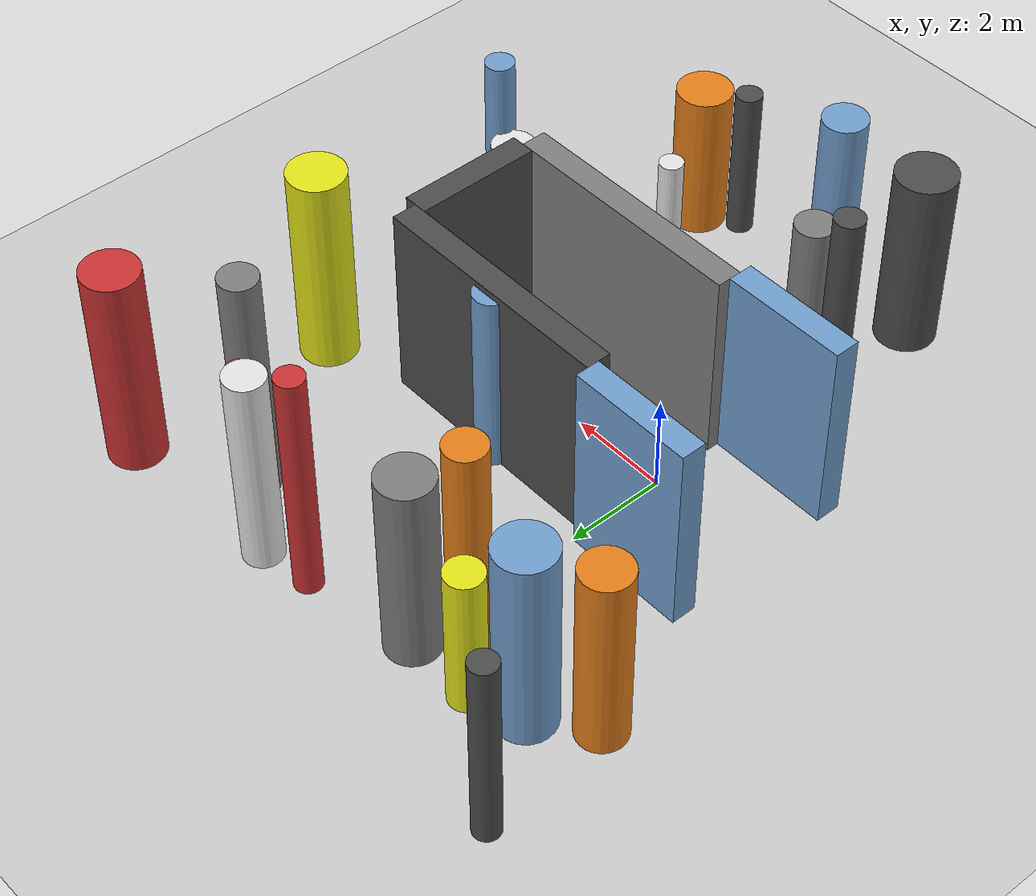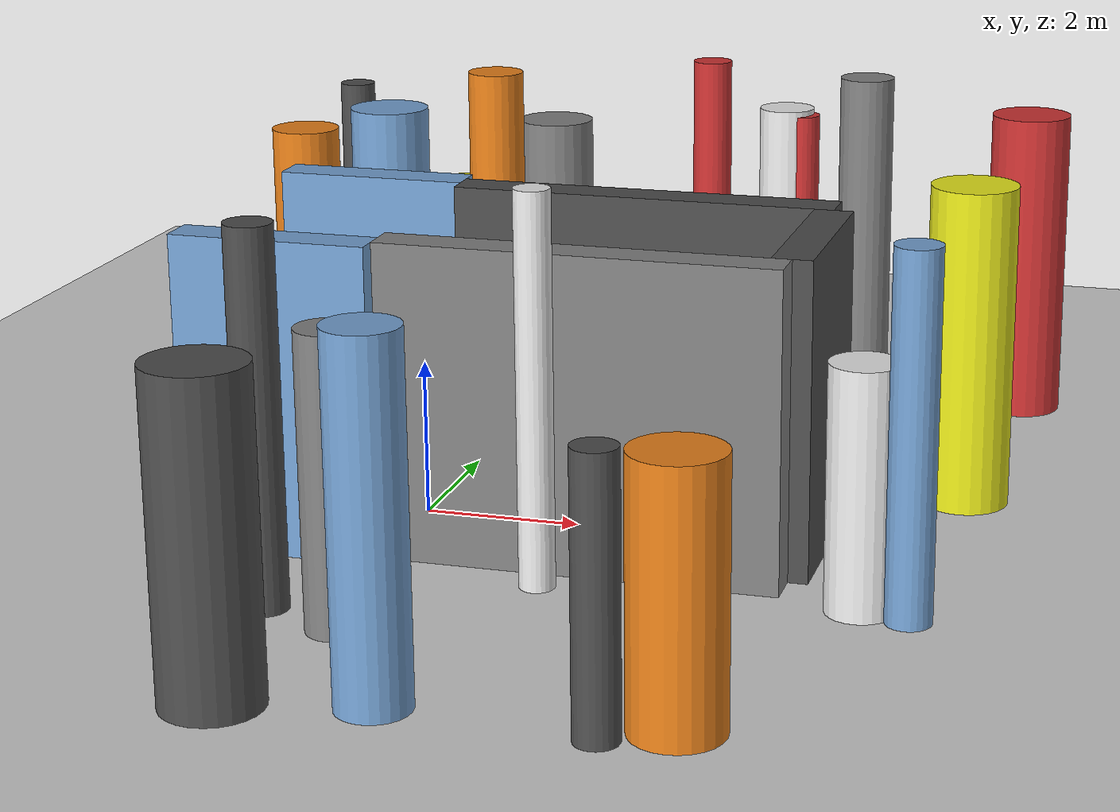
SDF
<?xml version='1.0'?>
<sdf version='1.6'>
  <world name='routeA_rl_v1__dense_recovery__rl_train__cul_de_sac_trap__000075'>
    <!-- Sun light -->
    <light name='sun' type='directional'>
      <cast_shadows>1</cast_shadows>
      <pose>0 0 10 0 0 0</pose>
      <diffuse>0.8 0.8 0.8 1</diffuse>
      <specular>0.2 0.2 0.2 1</specular>
      <attenuation>
        <range>1000</range>
        <constant>0.9</constant>
        <linear>0.01</linear>
        <quadratic>0.001</quadratic>
      </attenuation>
      <direction>-0.5 0.1 -0.9</direction>
    </light>

    <!-- Ground plane -->
    <model name='ground_plane'>
      <static>1</static>
      <link name='link'>
        <collision name='collision'>
          <geometry>
            <plane>
              <normal>0 0 1</normal>
              <size>100 100</size>
            </plane>
          </geometry>
          <surface>
            <contact>
              <collide_bitmask>65535</collide_bitmask>
              <ode/>
            </contact>
            <friction>
              <ode>
                <mu>100</mu>
                <mu2>50</mu2>
              </ode>
              <torsional><ode/></torsional>
            </friction>
            <bounce/>
          </surface>
          <max_contacts>10</max_contacts>
        </collision>
        <visual name='visual'>
          <cast_shadows>0</cast_shadows>
          <geometry>
            <plane>
              <normal>0 0 1</normal>
              <size>100 100</size>
            </plane>
          </geometry>
          <material>
            <script>
              <uri>file://media/materials/scripts/gazebo.material</uri>
              <n>Gazebo/Grey</n>
            </script>
          </material>
        </visual>
      </link>
    </model>

    <!-- Environment -->
    <magnetic_field>6e-06 2.3e-05 -4.2e-05</magnetic_field>
    <atmosphere type='adiabatic'/>
    <physics name='default_physics' default='0' type='ode'>
      <gravity>0 0 -9.8</gravity>
      <max_step_size>0.004</max_step_size>
      <real_time_factor>1</real_time_factor>
      <real_time_update_rate>250</real_time_update_rate>
    </physics>
    <scene>
      <ambient>0.4 0.4 0.4 1</ambient>
      <background>0.7 0.7 0.7 1</background>
      <shadows>1</shadows>
    </scene>
    <wind/>
    <spherical_coordinates>
      <surface_model>EARTH_WGS84</surface_model>
      <latitude_deg>0</latitude_deg>
      <longitude_deg>0</longitude_deg>
      <elevation>0</elevation>
      <heading_deg>0</heading_deg>
    </spherical_coordinates>

    <!-- ============ OBSTACLES (27) ============ -->
    <model name='trap_side_l'>
      <static>1</static>
      <link name='link'>
        <visual name='visual'>
          <geometry>
            <box>
              <size>5.0000 0.5000 4.0000</size>
            </box>
          </geometry>
          <material>
            <script>
              <n>Gazebo/Grey</n>
              <uri>file://media/materials/scripts/gazebo.material</uri>
            </script>
            <ambient>0.5 0.5 0.5 1</ambient>
          </material>
        </visual>
        <collision name='collision'>
          <geometry>
            <box>
              <size>5.0000 0.5000 4.0000</size>
            </box>
          </geometry>
          <max_contacts>10</max_contacts>
          <surface>
            <contact><ode/></contact>
            <bounce/>
            <friction>
              <ode><mu>1</mu><mu2>1</mu2></ode>
              <torsional><ode/></torsional>
            </friction>
          </surface>
        </collision>
      </link>
      <pose>2.5000 -1.5000 2.0000 0 0 0.0000</pose>
    </model>

    <model name='trap_side_r'>
      <static>1</static>
      <link name='link'>
        <visual name='visual'>
          <geometry>
            <box>
              <size>5.0000 0.5000 4.0000</size>
            </box>
          </geometry>
          <material>
            <script>
              <n>Gazebo/DarkGrey</n>
              <uri>file://media/materials/scripts/gazebo.material</uri>
            </script>
            <ambient>0.3 0.3 0.3 1</ambient>
          </material>
        </visual>
        <collision name='collision'>
          <geometry>
            <box>
              <size>5.0000 0.5000 4.0000</size>
            </box>
          </geometry>
          <max_contacts>10</max_contacts>
          <surface>
            <contact><ode/></contact>
            <bounce/>
            <friction>
              <ode><mu>1</mu><mu2>1</mu2></ode>
              <torsional><ode/></torsional>
            </friction>
          </surface>
        </collision>
      </link>
      <pose>2.5000 1.5000 2.0000 0 0 0.0000</pose>
    </model>

    <model name='trap_back'>
      <static>1</static>
      <link name='link'>
        <visual name='visual'>
          <geometry>
            <box>
              <size>0.5000 2.5000 4.0000</size>
            </box>
          </geometry>
          <material>
            <script>
              <n>Gazebo/DarkGrey</n>
              <uri>file://media/materials/scripts/gazebo.material</uri>
            </script>
            <ambient>0.3 0.3 0.3 1</ambient>
          </material>
        </visual>
        <collision name='collision'>
          <geometry>
            <box>
              <size>0.5000 2.5000 4.0000</size>
            </box>
          </geometry>
          <max_contacts>10</max_contacts>
          <surface>
            <contact><ode/></contact>
            <bounce/>
            <friction>
              <ode><mu>1</mu><mu2>1</mu2></ode>
              <torsional><ode/></torsional>
            </friction>
          </surface>
        </collision>
      </link>
      <pose>5.0000 0.0000 2.0000 0 0 0.0000</pose>
    </model>

    <model name='trap_funnel_l'>
      <static>1</static>
      <link name='link'>
        <visual name='visual'>
          <geometry>
            <box>
              <size>2.5000 0.5000 4.0000</size>
            </box>
          </geometry>
          <material>
            <script>
              <n>Gazebo/Blue</n>
              <uri>file://media/materials/scripts/gazebo.material</uri>
            </script>
            <ambient>0.447 0.624 0.812 1</ambient>
          </material>
        </visual>
        <collision name='collision'>
          <geometry>
            <box>
              <size>2.5000 0.5000 4.0000</size>
            </box>
          </geometry>
          <max_contacts>10</max_contacts>
          <surface>
            <contact><ode/></contact>
            <bounce/>
            <friction>
              <ode><mu>1</mu><mu2>1</mu2></ode>
              <torsional><ode/></torsional>
            </friction>
          </surface>
        </collision>
      </link>
      <pose>-1.2500 -1.7500 2.0000 0 0 0.0000</pose>
    </model>

    <model name='trap_funnel_r'>
      <static>1</static>
      <link name='link'>
        <visual name='visual'>
          <geometry>
            <box>
              <size>2.5000 0.5000 4.0000</size>
            </box>
          </geometry>
          <material>
            <script>
              <n>Gazebo/Blue</n>
              <uri>file://media/materials/scripts/gazebo.material</uri>
            </script>
            <ambient>0.447 0.624 0.812 1</ambient>
          </material>
        </visual>
        <collision name='collision'>
          <geometry>
            <box>
              <size>2.5000 0.5000 4.0000</size>
            </box>
          </geometry>
          <max_contacts>10</max_contacts>
          <surface>
            <contact><ode/></contact>
            <bounce/>
            <friction>
              <ode><mu>1</mu><mu2>1</mu2></ode>
              <torsional><ode/></torsional>
            </friction>
          </surface>
        </collision>
      </link>
      <pose>-1.2500 1.7500 2.0000 0 0 0.0000</pose>
    </model>

    <model name='trap_scatter_0'>
      <static>1</static>
      <link name='link'>
        <visual name='visual'>
          <geometry>
            <cylinder>
              <radius>0.2911</radius>
              <length>4.6406</length>
            </cylinder>
          </geometry>
          <material>
            <script>
              <n>Gazebo/DarkGrey</n>
              <uri>file://media/materials/scripts/gazebo.material</uri>
            </script>
            <ambient>0.3 0.3 0.3 1</ambient>
          </material>
        </visual>
        <collision name='collision'>
          <geometry>
            <cylinder>
              <radius>0.2911</radius>
              <length>4.6406</length>
            </cylinder>
          </geometry>
          <max_contacts>10</max_contacts>
          <surface>
            <contact><ode/></contact>
            <bounce/>
            <friction>
              <ode><mu>1</mu><mu2>1</mu2></ode>
              <torsional><ode/></torsional>
            </friction>
          </surface>
        </collision>
      </link>
      <pose>-0.7337 -3.5854 2.3203 0 0 0.0000</pose>
    </model>

    <model name='trap_scatter_1'>
      <static>1</static>
      <link name='link'>
        <visual name='visual'>
          <geometry>
            <cylinder>
              <radius>0.5488</radius>
              <length>3.1217</length>
            </cylinder>
          </geometry>
          <material>
            <script>
              <n>Gazebo/Orange</n>
              <uri>file://media/materials/scripts/gazebo.material</uri>
            </script>
            <ambient>0.9 0.5 0.1 1</ambient>
          </material>
        </visual>
        <collision name='collision'>
          <geometry>
            <cylinder>
              <radius>0.5488</radius>
              <length>3.1217</length>
            </cylinder>
          </geometry>
          <max_contacts>10</max_contacts>
          <surface>
            <contact><ode/></contact>
            <bounce/>
            <friction>
              <ode><mu>1</mu><mu2>1</mu2></ode>
              <torsional><ode/></torsional>
            </friction>
          </surface>
        </collision>
      </link>
      <pose>4.7663 -5.6318 1.5609 0 0 0.0000</pose>
    </model>

    <model name='trap_scatter_2'>
      <static>1</static>
      <link name='link'>
        <visual name='visual'>
          <geometry>
            <cylinder>
              <radius>0.2220</radius>
              <length>4.8777</length>
            </cylinder>
          </geometry>
          <material>
            <script>
              <n>Gazebo/White</n>
              <uri>file://media/materials/scripts/gazebo.material</uri>
            </script>
            <ambient>0.9 0.9 0.9 1</ambient>
          </material>
        </visual>
        <collision name='collision'>
          <geometry>
            <cylinder>
              <radius>0.2220</radius>
              <length>4.8777</length>
            </cylinder>
          </geometry>
          <max_contacts>10</max_contacts>
          <surface>
            <contact><ode/></contact>
            <bounce/>
            <friction>
              <ode><mu>1</mu><mu2>1</mu2></ode>
              <torsional><ode/></torsional>
            </friction>
          </surface>
        </collision>
      </link>
      <pose>2.1370 -2.1363 2.4388 0 0 0.0000</pose>
    </model>

    <model name='trap_scatter_3'>
      <static>1</static>
      <link name='link'>
        <visual name='visual'>
          <geometry>
            <cylinder>
              <radius>0.5276</radius>
              <length>4.0536</length>
            </cylinder>
          </geometry>
          <material>
            <script>
              <n>Gazebo/Grey</n>
              <uri>file://media/materials/scripts/gazebo.material</uri>
            </script>
            <ambient>0.5 0.5 0.5 1</ambient>
          </material>
        </visual>
        <collision name='collision'>
          <geometry>
            <cylinder>
              <radius>0.5276</radius>
              <length>4.0536</length>
            </cylinder>
          </geometry>
          <max_contacts>10</max_contacts>
          <surface>
            <contact><ode/></contact>
            <bounce/>
            <friction>
              <ode><mu>1</mu><mu2>1</mu2></ode>
              <torsional><ode/></torsional>
            </friction>
          </surface>
        </collision>
      </link>
      <pose>0.0648 5.5417 2.0268 0 0 0.0000</pose>
    </model>

    <model name='trap_scatter_4'>
      <static>1</static>
      <link name='link'>
        <visual name='visual'>
          <geometry>
            <cylinder>
              <radius>0.2626</radius>
              <length>3.2333</length>
            </cylinder>
          </geometry>
          <material>
            <script>
              <n>Gazebo/DarkGrey</n>
              <uri>file://media/materials/scripts/gazebo.material</uri>
            </script>
            <ambient>0.3 0.3 0.3 1</ambient>
          </material>
        </visual>
        <collision name='collision'>
          <geometry>
            <cylinder>
              <radius>0.2626</radius>
              <length>3.2333</length>
            </cylinder>
          </geometry>
          <max_contacts>10</max_contacts>
          <surface>
            <contact><ode/></contact>
            <bounce/>
            <friction>
              <ode><mu>1</mu><mu2>1</mu2></ode>
              <torsional><ode/></torsional>
            </friction>
          </surface>
        </collision>
      </link>
      <pose>4.0109 -6.0454 1.6166 0 0 0.0000</pose>
    </model>

    <model name='trap_scatter_5'>
      <static>1</static>
      <link name='link'>
        <visual name='visual'>
          <geometry>
            <cylinder>
              <radius>0.2588</radius>
              <length>4.1295</length>
            </cylinder>
          </geometry>
          <material>
            <script>
              <n>Gazebo/DarkGrey</n>
              <uri>file://media/materials/scripts/gazebo.material</uri>
            </script>
            <ambient>0.3 0.3 0.3 1</ambient>
          </material>
        </visual>
        <collision name='collision'>
          <geometry>
            <cylinder>
              <radius>0.2588</radius>
              <length>4.1295</length>
            </cylinder>
          </geometry>
          <max_contacts>10</max_contacts>
          <surface>
            <contact><ode/></contact>
            <bounce/>
            <friction>
              <ode><mu>1</mu><mu2>1</mu2></ode>
              <torsional><ode/></torsional>
            </friction>
          </surface>
        </collision>
      </link>
      <pose>-3.5925 7.0756 2.0647 0 0 0.0000</pose>
    </model>

    <model name='trap_scatter_6'>
      <static>1</static>
      <link name='link'>
        <visual name='visual'>
          <geometry>
            <cylinder>
              <radius>0.4775</radius>
              <length>3.9665</length>
            </cylinder>
          </geometry>
          <material>
            <script>
              <n>Gazebo/Orange</n>
              <uri>file://media/materials/scripts/gazebo.material</uri>
            </script>
            <ambient>0.9 0.5 0.1 1</ambient>
          </material>
        </visual>
        <collision name='collision'>
          <geometry>
            <cylinder>
              <radius>0.4775</radius>
              <length>3.9665</length>
            </cylinder>
          </geometry>
          <max_contacts>10</max_contacts>
          <surface>
            <contact><ode/></contact>
            <bounce/>
            <friction>
              <ode><mu>1</mu><mu2>1</mu2></ode>
              <torsional><ode/></torsional>
            </friction>
          </surface>
        </collision>
      </link>
      <pose>-3.3662 4.4271 1.9833 0 0 0.0000</pose>
    </model>

    <model name='trap_scatter_7'>
      <static>1</static>
      <link name='link'>
        <visual name='visual'>
          <geometry>
            <cylinder>
              <radius>0.4300</radius>
              <length>3.0328</length>
            </cylinder>
          </geometry>
          <material>
            <script>
              <n>Gazebo/White</n>
              <uri>file://media/materials/scripts/gazebo.material</uri>
            </script>
            <ambient>0.9 0.9 0.9 1</ambient>
          </material>
        </visual>
        <collision name='collision'>
          <geometry>
            <cylinder>
              <radius>0.4300</radius>
              <length>3.0328</length>
            </cylinder>
          </geometry>
          <max_contacts>10</max_contacts>
          <surface>
            <contact><ode/></contact>
            <bounce/>
            <friction>
              <ode><mu>1</mu><mu2>1</mu2></ode>
              <torsional><ode/></torsional>
            </friction>
          </surface>
        </collision>
      </link>
      <pose>5.9986 -1.8953 1.5164 0 0 0.0000</pose>
    </model>

    <model name='trap_scatter_8'>
      <static>1</static>
      <link name='link'>
        <visual name='visual'>
          <geometry>
            <cylinder>
              <radius>0.3693</radius>
              <length>4.9331</length>
            </cylinder>
          </geometry>
          <material>
            <script>
              <n>Gazebo/Grey</n>
              <uri>file://media/materials/scripts/gazebo.material</uri>
            </script>
            <ambient>0.5 0.5 0.5 1</ambient>
          </material>
        </visual>
        <collision name='collision'>
          <geometry>
            <cylinder>
              <radius>0.3693</radius>
              <length>4.9331</length>
            </cylinder>
          </geometry>
          <max_contacts>10</max_contacts>
          <surface>
            <contact><ode/></contact>
            <bounce/>
            <friction>
              <ode><mu>1</mu><mu2>1</mu2></ode>
              <torsional><ode/></torsional>
            </friction>
          </surface>
        </collision>
      </link>
      <pose>4.6660 5.2502 2.4665 0 0 0.0000</pose>
    </model>

    <model name='trap_scatter_9'>
      <static>1</static>
      <link name='link'>
        <visual name='visual'>
          <geometry>
            <cylinder>
              <radius>0.2716</radius>
              <length>4.9184</length>
            </cylinder>
          </geometry>
          <material>
            <script>
              <n>Gazebo/Red</n>
              <uri>file://media/materials/scripts/gazebo.material</uri>
            </script>
            <ambient>0.8 0.2 0.2 1</ambient>
          </material>
        </visual>
        <collision name='collision'>
          <geometry>
            <cylinder>
              <radius>0.2716</radius>
              <length>4.9184</length>
            </cylinder>
          </geometry>
          <max_contacts>10</max_contacts>
          <surface>
            <contact><ode/></contact>
            <bounce/>
            <friction>
              <ode><mu>1</mu><mu2>1</mu2></ode>
              <torsional><ode/></torsional>
            </friction>
          </surface>
        </collision>
      </link>
      <pose>2.2739 6.0347 2.4592 0 0 0.0000</pose>
    </model>

    <model name='trap_scatter_10'>
      <static>1</static>
      <link name='link'>
        <visual name='visual'>
          <geometry>
            <cylinder>
              <radius>0.3884</radius>
              <length>3.6020</length>
            </cylinder>
          </geometry>
          <material>
            <script>
              <n>Gazebo/Grey</n>
              <uri>file://media/materials/scripts/gazebo.material</uri>
            </script>
            <ambient>0.5 0.5 0.5 1</ambient>
          </material>
        </visual>
        <collision name='collision'>
          <geometry>
            <cylinder>
              <radius>0.3884</radius>
              <length>3.6020</length>
            </cylinder>
          </geometry>
          <max_contacts>10</max_contacts>
          <surface>
            <contact><ode/></contact>
            <bounce/>
            <friction>
              <ode><mu>1</mu><mu2>1</mu2></ode>
              <torsional><ode/></torsional>
            </friction>
          </surface>
        </collision>
      </link>
      <pose>0.3277 -3.9654 1.8010 0 0 0.0000</pose>
    </model>

    <model name='trap_scatter_11'>
      <static>1</static>
      <link name='link'>
        <visual name='visual'>
          <geometry>
            <cylinder>
              <radius>0.3487</radius>
              <length>3.8762</length>
            </cylinder>
          </geometry>
          <material>
            <script>
              <n>Gazebo/Blue</n>
              <uri>file://media/materials/scripts/gazebo.material</uri>
            </script>
            <ambient>0.447 0.624 0.812 1</ambient>
          </material>
        </visual>
        <collision name='collision'>
          <geometry>
            <cylinder>
              <radius>0.3487</radius>
              <length>3.8762</length>
            </cylinder>
          </geometry>
          <max_contacts>10</max_contacts>
          <surface>
            <contact><ode/></contact>
            <bounce/>
            <friction>
              <ode><mu>1</mu><mu2>1</mu2></ode>
              <torsional><ode/></torsional>
            </friction>
          </surface>
        </collision>
      </link>
      <pose>2.5262 1.6416 1.9381 0 0 0.0000</pose>
    </model>

    <model name='trap_scatter_12'>
      <static>1</static>
      <link name='link'>
        <visual name='visual'>
          <geometry>
            <cylinder>
              <radius>0.3872</radius>
              <length>4.2623</length>
            </cylinder>
          </geometry>
          <material>
            <script>
              <n>Gazebo/White</n>
              <uri>file://media/materials/scripts/gazebo.material</uri>
            </script>
            <ambient>0.9 0.9 0.9 1</ambient>
          </material>
        </visual>
        <collision name='collision'>
          <geometry>
            <cylinder>
              <radius>0.3872</radius>
              <length>4.2623</length>
            </cylinder>
          </geometry>
          <max_contacts>10</max_contacts>
          <surface>
            <contact><ode/></contact>
            <bounce/>
            <friction>
              <ode><mu>1</mu><mu2>1</mu2></ode>
              <torsional><ode/></torsional>
            </friction>
          </surface>
        </collision>
      </link>
      <pose>3.3397 6.1885 2.1312 0 0 0.0000</pose>
    </model>

    <model name='trap_scatter_13'>
      <static>1</static>
      <link name='link'>
        <visual name='visual'>
          <geometry>
            <cylinder>
              <radius>0.5646</radius>
              <length>4.1707</length>
            </cylinder>
          </geometry>
          <material>
            <script>
              <n>Gazebo/Blue</n>
              <uri>file://media/materials/scripts/gazebo.material</uri>
            </script>
            <ambient>0.447 0.624 0.812 1</ambient>
          </material>
        </visual>
        <collision name='collision'>
          <geometry>
            <cylinder>
              <radius>0.5646</radius>
              <length>4.1707</length>
            </cylinder>
          </geometry>
          <max_contacts>10</max_contacts>
          <surface>
            <contact><ode/></contact>
            <bounce/>
            <friction>
              <ode><mu>1</mu><mu2>1</mu2></ode>
              <torsional><ode/></torsional>
            </friction>
          </surface>
        </collision>
      </link>
      <pose>-2.3582 5.1731 2.0853 0 0 0.0000</pose>
    </model>

    <model name='trap_scatter_14'>
      <static>1</static>
      <link name='link'>
        <visual name='visual'>
          <geometry>
            <cylinder>
              <radius>0.5974</radius>
              <length>3.8383</length>
            </cylinder>
          </geometry>
          <material>
            <script>
              <n>Gazebo/DarkGrey</n>
              <uri>file://media/materials/scripts/gazebo.material</uri>
            </script>
            <ambient>0.3 0.3 0.3 1</ambient>
          </material>
        </visual>
        <collision name='collision'>
          <geometry>
            <cylinder>
              <radius>0.5974</radius>
              <length>3.8383</length>
            </cylinder>
          </geometry>
          <max_contacts>10</max_contacts>
          <surface>
            <contact><ode/></contact>
            <bounce/>
            <friction>
              <ode><mu>1</mu><mu2>1</mu2></ode>
              <torsional><ode/></torsional>
            </friction>
          </surface>
        </collision>
      </link>
      <pose>-0.2058 -6.2325 1.9191 0 0 0.0000</pose>
    </model>

    <model name='trap_scatter_15'>
      <static>1</static>
      <link name='link'>
        <visual name='visual'>
          <geometry>
            <cylinder>
              <radius>0.2534</radius>
              <length>4.1840</length>
            </cylinder>
          </geometry>
          <material>
            <script>
              <n>Gazebo/Red</n>
              <uri>file://media/materials/scripts/gazebo.material</uri>
            </script>
            <ambient>0.8 0.2 0.2 1</ambient>
          </material>
        </visual>
        <collision name='collision'>
          <geometry>
            <cylinder>
              <radius>0.2534</radius>
              <length>4.1840</length>
            </cylinder>
          </geometry>
          <max_contacts>10</max_contacts>
          <surface>
            <contact><ode/></contact>
            <bounce/>
            <friction>
              <ode><mu>1</mu><mu2>1</mu2></ode>
              <torsional><ode/></torsional>
            </friction>
          </surface>
        </collision>
      </link>
      <pose>3.5715 6.1181 2.0920 0 0 0.0000</pose>
    </model>

    <model name='trap_scatter_17'>
      <static>1</static>
      <link name='link'>
        <visual name='visual'>
          <geometry>
            <cylinder>
              <radius>0.5633</radius>
              <length>4.2218</length>
            </cylinder>
          </geometry>
          <material>
            <script>
              <n>Gazebo/Yellow</n>
              <uri>file://media/materials/scripts/gazebo.material</uri>
            </script>
            <ambient>0.9 0.9 0.1 1</ambient>
          </material>
        </visual>
        <collision name='collision'>
          <geometry>
            <cylinder>
              <radius>0.5633</radius>
              <length>4.2218</length>
            </cylinder>
          </geometry>
          <max_contacts>10</max_contacts>
          <surface>
            <contact><ode/></contact>
            <bounce/>
            <friction>
              <ode><mu>1</mu><mu2>1</mu2></ode>
              <torsional><ode/></torsional>
            </friction>
          </surface>
        </collision>
      </link>
      <pose>6.6296 2.1501 2.1109 0 0 0.0000</pose>
    </model>

    <model name='trap_scatter_18'>
      <static>1</static>
      <link name='link'>
        <visual name='visual'>
          <geometry>
            <cylinder>
              <radius>0.4413</radius>
              <length>4.2546</length>
            </cylinder>
          </geometry>
          <material>
            <script>
              <n>Gazebo/Blue</n>
              <uri>file://media/materials/scripts/gazebo.material</uri>
            </script>
            <ambient>0.447 0.624 0.812 1</ambient>
          </material>
        </visual>
        <collision name='collision'>
          <geometry>
            <cylinder>
              <radius>0.4413</radius>
              <length>4.2546</length>
            </cylinder>
          </geometry>
          <max_contacts>10</max_contacts>
          <surface>
            <contact><ode/></contact>
            <bounce/>
            <friction>
              <ode><mu>1</mu><mu2>1</mu2></ode>
              <torsional><ode/></torsional>
            </friction>
          </surface>
        </collision>
      </link>
      <pose>1.4883 -5.8696 2.1273 0 0 0.0000</pose>
    </model>

    <model name='trap_scatter_21'>
      <static>1</static>
      <link name='link'>
        <visual name='visual'>
          <geometry>
            <cylinder>
              <radius>0.3904</radius>
              <length>4.8317</length>
            </cylinder>
          </geometry>
          <material>
            <script>
              <n>Gazebo/Orange</n>
              <uri>file://media/materials/scripts/gazebo.material</uri>
            </script>
            <ambient>0.9 0.5 0.1 1</ambient>
          </material>
        </visual>
        <collision name='collision'>
          <geometry>
            <cylinder>
              <radius>0.3904</radius>
              <length>4.8317</length>
            </cylinder>
          </geometry>
          <max_contacts>10</max_contacts>
          <surface>
            <contact><ode/></contact>
            <bounce/>
            <friction>
              <ode><mu>1</mu><mu2>1</mu2></ode>
              <torsional><ode/></torsional>
            </friction>
          </surface>
        </collision>
      </link>
      <pose>-0.6186 4.8702 2.4158 0 0 0.0000</pose>
    </model>

    <model name='trap_scatter_22'>
      <static>1</static>
      <link name='link'>
        <visual name='visual'>
          <geometry>
            <cylinder>
              <radius>0.5507</radius>
              <length>4.3033</length>
            </cylinder>
          </geometry>
          <material>
            <script>
              <n>Gazebo/Red</n>
              <uri>file://media/materials/scripts/gazebo.material</uri>
            </script>
            <ambient>0.8 0.2 0.2 1</ambient>
          </material>
        </visual>
        <collision name='collision'>
          <geometry>
            <cylinder>
              <radius>0.5507</radius>
              <length>4.3033</length>
            </cylinder>
          </geometry>
          <max_contacts>10</max_contacts>
          <surface>
            <contact><ode/></contact>
            <bounce/>
            <friction>
              <ode><mu>1</mu><mu2>1</mu2></ode>
              <torsional><ode/></torsional>
            </friction>
          </surface>
        </collision>
      </link>
      <pose>6.8196 6.3816 2.1516 0 0 0.0000</pose>
    </model>

    <model name='trap_scatter_23'>
      <static>1</static>
      <link name='link'>
        <visual name='visual'>
          <geometry>
            <cylinder>
              <radius>0.2852</radius>
              <length>4.4954</length>
            </cylinder>
          </geometry>
          <material>
            <script>
              <n>Gazebo/Blue</n>
              <uri>file://media/materials/scripts/gazebo.material</uri>
            </script>
            <ambient>0.447 0.624 0.812 1</ambient>
          </material>
        </visual>
        <collision name='collision'>
          <geometry>
            <cylinder>
              <radius>0.2852</radius>
              <length>4.4954</length>
            </cylinder>
          </geometry>
          <max_contacts>10</max_contacts>
          <surface>
            <contact><ode/></contact>
            <bounce/>
            <friction>
              <ode><mu>1</mu><mu2>1</mu2></ode>
              <torsional><ode/></torsional>
            </friction>
          </surface>
        </collision>
      </link>
      <pose>6.6029 -2.0984 2.2477 0 0 0.0000</pose>
    </model>

    <model name='trap_scatter_24'>
      <static>1</static>
      <link name='link'>
        <visual name='visual'>
          <geometry>
            <cylinder>
              <radius>0.3615</radius>
              <length>3.0738</length>
            </cylinder>
          </geometry>
          <material>
            <script>
              <n>Gazebo/Yellow</n>
              <uri>file://media/materials/scripts/gazebo.material</uri>
            </script>
            <ambient>0.9 0.9 0.1 1</ambient>
          </material>
        </visual>
        <collision name='collision'>
          <geometry>
            <cylinder>
              <radius>0.3615</radius>
              <length>3.0738</length>
            </cylinder>
          </geometry>
          <max_contacts>10</max_contacts>
          <surface>
            <contact><ode/></contact>
            <bounce/>
            <friction>
              <ode><mu>1</mu><mu2>1</mu2></ode>
              <torsional><ode/></torsional>
            </friction>
          </surface>
        </collision>
      </link>
      <pose>-1.3876 5.5931 1.5369 0 0 0.0000</pose>
    </model>

    <!-- GUI camera -->
    <gui fullscreen='0'>
      <camera name='user_camera'>
        <pose>-15 0 18 0 0.85 0.15</pose>
        <view_controller>orbit</view_controller>
        <projection_type>perspective</projection_type>
      </camera>
    </gui>
  </world>
</sdf>
